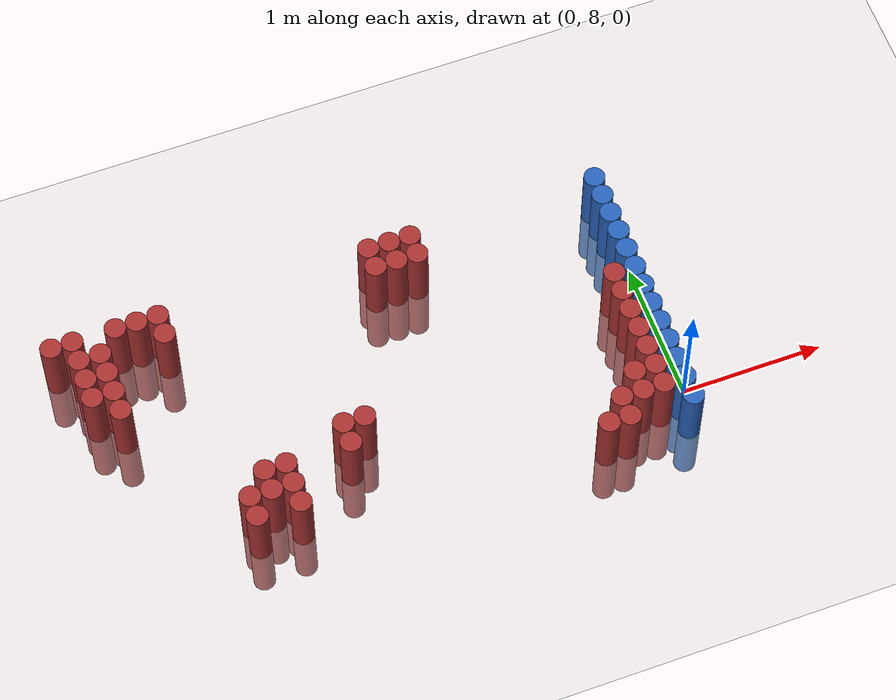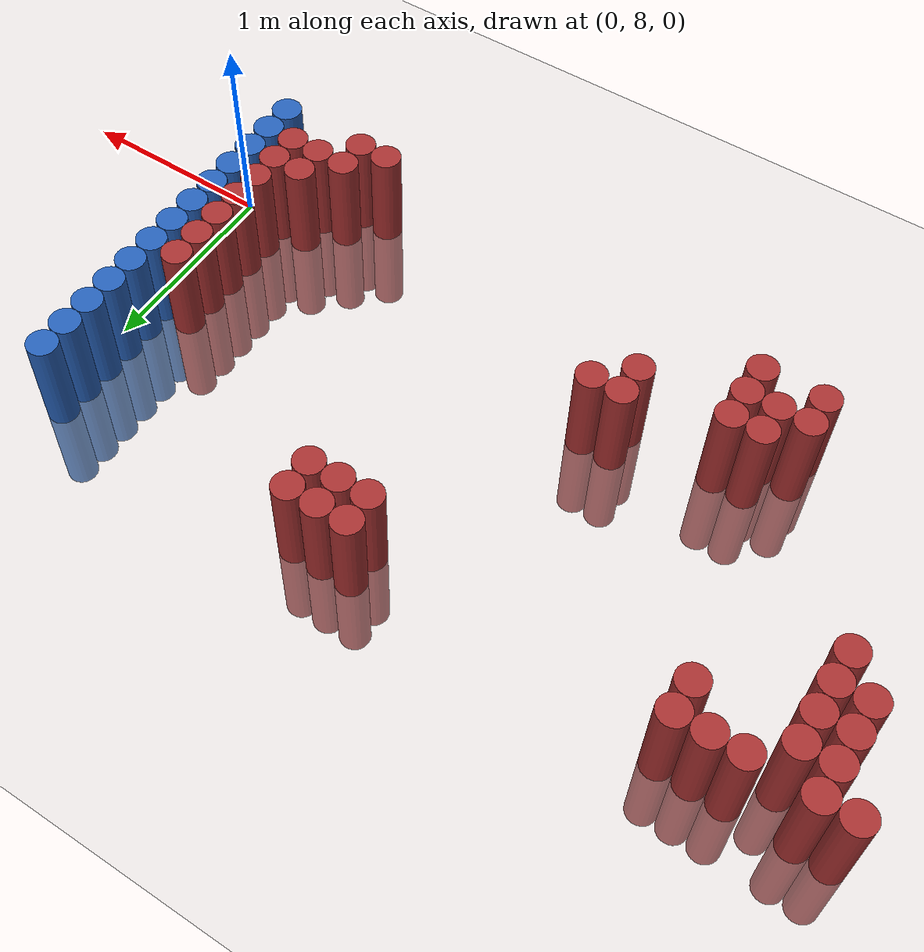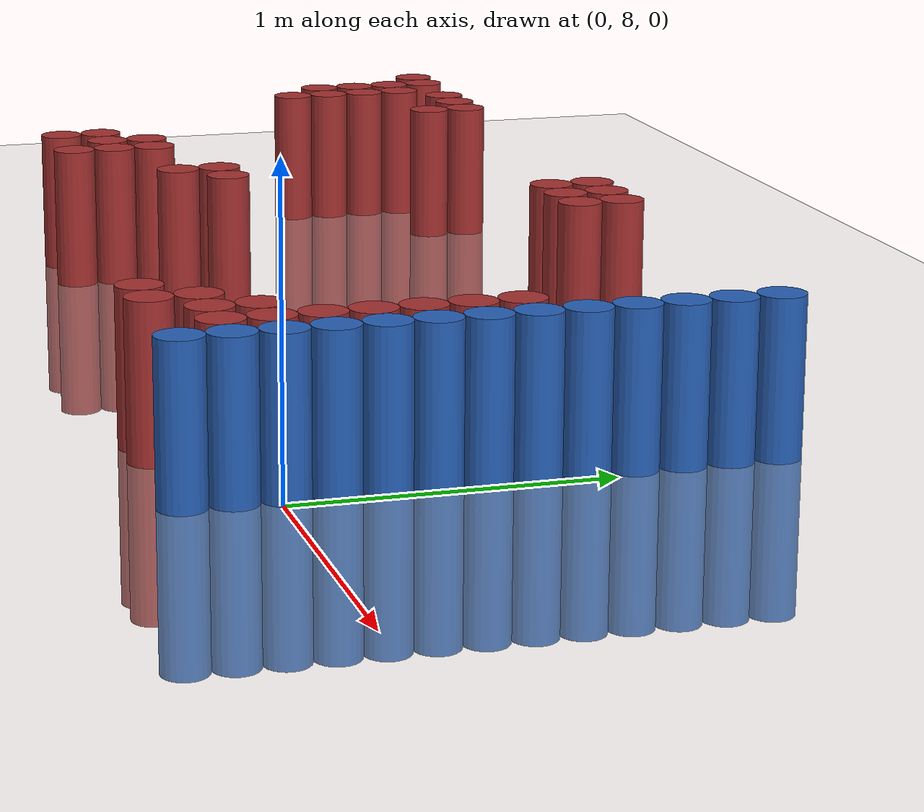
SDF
<sdf version="1.6">
 <world name="default">
  <model name="ground_plane">
   <static>1</static>
   <link name="link">
    <collision name="collision">
     <geometry><plane><normal>0 0 1</normal><size>100 100</size></plane></geometry>
     <surface><friction><ode><mu>100</mu><mu2>50</mu2></ode></friction></surface>
    </collision>
    <visual name="visual">
     <cast_shadows>0</cast_shadows>
     <geometry><plane><normal>0 0 1</normal><size>100 100</size></plane></geometry>
     <material>
      <script><uri>file://media/materials/scripts/gazebo.material</uri><name>Gazebo/Grey</name></script>
     </material>
    </visual>
   </link>
  </model>
  <model name="unit_cylinder_153">
   <static>1</static>
   <pose>-3.975000 9.525000 0.000000 0.000000 0.000000 0.000000</pose>
   <link name="link">
    <inertial>
     <mass>1</mass>
     <inertia><ixx>0.145833</ixx><ixy>0</ixy><ixz>0</ixz><iyy>0.145833</iyy><iyz>0</iyz><izz>0.125</izz></inertia>
    </inertial>
    <collision name="collision">
     <geometry><cylinder><radius>0.075000</radius><length>1</length></cylinder></geometry>
    </collision>
    <visual name="visual">
     <geometry><cylinder><radius>0.075000</radius><length>1</length></cylinder></geometry>
     <material>
      <ambient>0.648000 0.192000 0.192000 1</ambient>
      <diffuse>0.648000 0.192000 0.192000 1</diffuse>
     </material>
     <material>
      <script><name>Gazebo/Grey</name><uri>file://media/materials/scripts/gazebo.material</uri></script>
     </material>
    </visual>
   </link>
  </model>
  <model name="unit_cylinder_154">
   <static>1</static>
   <pose>-3.825000 9.075000 0.000000 0.000000 0.000000 0.000000</pose>
   <link name="link">
    <inertial>
     <mass>1</mass>
     <inertia><ixx>0.145833</ixx><ixy>0</ixy><ixz>0</ixz><iyy>0.145833</iyy><iyz>0</iyz><izz>0.125</izz></inertia>
    </inertial>
    <collision name="collision">
     <geometry><cylinder><radius>0.075000</radius><length>1</length></cylinder></geometry>
    </collision>
    <visual name="visual">
     <geometry><cylinder><radius>0.075000</radius><length>1</length></cylinder></geometry>
     <material>
      <ambient>0.648000 0.192000 0.192000 1</ambient>
      <diffuse>0.648000 0.192000 0.192000 1</diffuse>
     </material>
     <material>
      <script><name>Gazebo/Grey</name><uri>file://media/materials/scripts/gazebo.material</uri></script>
     </material>
    </visual>
   </link>
  </model>
  <model name="unit_cylinder_155">
   <static>1</static>
   <pose>-3.825000 9.225000 0.000000 0.000000 0.000000 0.000000</pose>
   <link name="link">
    <inertial>
     <mass>1</mass>
     <inertia><ixx>0.145833</ixx><ixy>0</ixy><ixz>0</ixz><iyy>0.145833</iyy><iyz>0</iyz><izz>0.125</izz></inertia>
    </inertial>
    <collision name="collision">
     <geometry><cylinder><radius>0.075000</radius><length>1</length></cylinder></geometry>
    </collision>
    <visual name="visual">
     <geometry><cylinder><radius>0.075000</radius><length>1</length></cylinder></geometry>
     <material>
      <ambient>0.648000 0.192000 0.192000 1</ambient>
      <diffuse>0.648000 0.192000 0.192000 1</diffuse>
     </material>
     <material>
      <script><name>Gazebo/Grey</name><uri>file://media/materials/scripts/gazebo.material</uri></script>
     </material>
    </visual>
   </link>
  </model>
  <model name="unit_cylinder_156">
   <static>1</static>
   <pose>-3.825000 9.375000 0.000000 0.000000 0.000000 0.000000</pose>
   <link name="link">
    <inertial>
     <mass>1</mass>
     <inertia><ixx>0.145833</ixx><ixy>0</ixy><ixz>0</ixz><iyy>0.145833</iyy><iyz>0</iyz><izz>0.125</izz></inertia>
    </inertial>
    <collision name="collision">
     <geometry><cylinder><radius>0.075000</radius><length>1</length></cylinder></geometry>
    </collision>
    <visual name="visual">
     <geometry><cylinder><radius>0.075000</radius><length>1</length></cylinder></geometry>
     <material>
      <ambient>0.648000 0.192000 0.192000 1</ambient>
      <diffuse>0.648000 0.192000 0.192000 1</diffuse>
     </material>
     <material>
      <script><name>Gazebo/Grey</name><uri>file://media/materials/scripts/gazebo.material</uri></script>
     </material>
    </visual>
   </link>
  </model>
  <model name="unit_cylinder_157">
   <static>1</static>
   <pose>-3.825000 9.525000 0.000000 0.000000 0.000000 0.000000</pose>
   <link name="link">
    <inertial>
     <mass>1</mass>
     <inertia><ixx>0.145833</ixx><ixy>0</ixy><ixz>0</ixz><iyy>0.145833</iyy><iyz>0</iyz><izz>0.125</izz></inertia>
    </inertial>
    <collision name="collision">
     <geometry><cylinder><radius>0.075000</radius><length>1</length></cylinder></geometry>
    </collision>
    <visual name="visual">
     <geometry><cylinder><radius>0.075000</radius><length>1</length></cylinder></geometry>
     <material>
      <ambient>0.648000 0.192000 0.192000 1</ambient>
      <diffuse>0.648000 0.192000 0.192000 1</diffuse>
     </material>
     <material>
      <script><name>Gazebo/Grey</name><uri>file://media/materials/scripts/gazebo.material</uri></script>
     </material>
    </visual>
   </link>
  </model>
  <model name="unit_cylinder_159">
   <static>1</static>
   <pose>-3.675000 8.925000 0.000000 0.000000 0.000000 0.000000</pose>
   <link name="link">
    <inertial>
     <mass>1</mass>
     <inertia><ixx>0.145833</ixx><ixy>0</ixy><ixz>0</ixz><iyy>0.145833</iyy><iyz>0</iyz><izz>0.125</izz></inertia>
    </inertial>
    <collision name="collision">
     <geometry><cylinder><radius>0.075000</radius><length>1</length></cylinder></geometry>
    </collision>
    <visual name="visual">
     <geometry><cylinder><radius>0.075000</radius><length>1</length></cylinder></geometry>
     <material>
      <ambient>0.648000 0.192000 0.192000 1</ambient>
      <diffuse>0.648000 0.192000 0.192000 1</diffuse>
     </material>
     <material>
      <script><name>Gazebo/Grey</name><uri>file://media/materials/scripts/gazebo.material</uri></script>
     </material>
    </visual>
   </link>
  </model>
  <model name="unit_cylinder_160">
   <static>1</static>
   <pose>-3.675000 9.075000 0.000000 0.000000 0.000000 0.000000</pose>
   <link name="link">
    <inertial>
     <mass>1</mass>
     <inertia><ixx>0.145833</ixx><ixy>0</ixy><ixz>0</ixz><iyy>0.145833</iyy><iyz>0</iyz><izz>0.125</izz></inertia>
    </inertial>
    <collision name="collision">
     <geometry><cylinder><radius>0.075000</radius><length>1</length></cylinder></geometry>
    </collision>
    <visual name="visual">
     <geometry><cylinder><radius>0.075000</radius><length>1</length></cylinder></geometry>
     <material>
      <ambient>0.648000 0.192000 0.192000 1</ambient>
      <diffuse>0.648000 0.192000 0.192000 1</diffuse>
     </material>
     <material>
      <script><name>Gazebo/Grey</name><uri>file://media/materials/scripts/gazebo.material</uri></script>
     </material>
    </visual>
   </link>
  </model>
  <model name="unit_cylinder_161">
   <static>1</static>
   <pose>-3.675000 9.225000 0.000000 0.000000 0.000000 0.000000</pose>
   <link name="link">
    <inertial>
     <mass>1</mass>
     <inertia><ixx>0.145833</ixx><ixy>0</ixy><ixz>0</ixz><iyy>0.145833</iyy><iyz>0</iyz><izz>0.125</izz></inertia>
    </inertial>
    <collision name="collision">
     <geometry><cylinder><radius>0.075000</radius><length>1</length></cylinder></geometry>
    </collision>
    <visual name="visual">
     <geometry><cylinder><radius>0.075000</radius><length>1</length></cylinder></geometry>
     <material>
      <ambient>0.648000 0.192000 0.192000 1</ambient>
      <diffuse>0.648000 0.192000 0.192000 1</diffuse>
     </material>
     <material>
      <script><name>Gazebo/Grey</name><uri>file://media/materials/scripts/gazebo.material</uri></script>
     </material>
    </visual>
   </link>
  </model>
  <model name="unit_cylinder_162">
   <static>1</static>
   <pose>-3.675000 9.375000 0.000000 0.000000 0.000000 0.000000</pose>
   <link name="link">
    <inertial>
     <mass>1</mass>
     <inertia><ixx>0.145833</ixx><ixy>0</ixy><ixz>0</ixz><iyy>0.145833</iyy><iyz>0</iyz><izz>0.125</izz></inertia>
    </inertial>
    <collision name="collision">
     <geometry><cylinder><radius>0.075000</radius><length>1</length></cylinder></geometry>
    </collision>
    <visual name="visual">
     <geometry><cylinder><radius>0.075000</radius><length>1</length></cylinder></geometry>
     <material>
      <ambient>0.648000 0.192000 0.192000 1</ambient>
      <diffuse>0.648000 0.192000 0.192000 1</diffuse>
     </material>
     <material>
      <script><name>Gazebo/Grey</name><uri>file://media/materials/scripts/gazebo.material</uri></script>
     </material>
    </visual>
   </link>
  </model>
  <model name="unit_cylinder_166">
   <static>1</static>
   <pose>-3.525000 9.525000 0.000000 0.000000 0.000000 0.000000</pose>
   <link name="link">
    <inertial>
     <mass>1</mass>
     <inertia><ixx>0.145833</ixx><ixy>0</ixy><ixz>0</ixz><iyy>0.145833</iyy><iyz>0</iyz><izz>0.125</izz></inertia>
    </inertial>
    <collision name="collision">
     <geometry><cylinder><radius>0.075000</radius><length>1</length></cylinder></geometry>
    </collision>
    <visual name="visual">
     <geometry><cylinder><radius>0.075000</radius><length>1</length></cylinder></geometry>
     <material>
      <ambient>0.648000 0.192000 0.192000 1</ambient>
      <diffuse>0.648000 0.192000 0.192000 1</diffuse>
     </material>
     <material>
      <script><name>Gazebo/Grey</name><uri>file://media/materials/scripts/gazebo.material</uri></script>
     </material>
    </visual>
   </link>
  </model>
  <model name="unit_cylinder_167">
   <static>1</static>
   <pose>-3.375000 9.525000 0.000000 0.000000 0.000000 0.000000</pose>
   <link name="link">
    <inertial>
     <mass>1</mass>
     <inertia><ixx>0.145833</ixx><ixy>0</ixy><ixz>0</ixz><iyy>0.145833</iyy><iyz>0</iyz><izz>0.125</izz></inertia>
    </inertial>
    <collision name="collision">
     <geometry><cylinder><radius>0.075000</radius><length>1</length></cylinder></geometry>
    </collision>
    <visual name="visual">
     <geometry><cylinder><radius>0.075000</radius><length>1</length></cylinder></geometry>
     <material>
      <ambient>0.648000 0.192000 0.192000 1</ambient>
      <diffuse>0.648000 0.192000 0.192000 1</diffuse>
     </material>
     <material>
      <script><name>Gazebo/Grey</name><uri>file://media/materials/scripts/gazebo.material</uri></script>
     </material>
    </visual>
   </link>
  </model>
  <model name="unit_cylinder_169">
   <static>1</static>
   <pose>-3.225000 9.375000 0.000000 0.000000 0.000000 0.000000</pose>
   <link name="link">
    <inertial>
     <mass>1</mass>
     <inertia><ixx>0.145833</ixx><ixy>0</ixy><ixz>0</ixz><iyy>0.145833</iyy><iyz>0</iyz><izz>0.125</izz></inertia>
    </inertial>
    <collision name="collision">
     <geometry><cylinder><radius>0.075000</radius><length>1</length></cylinder></geometry>
    </collision>
    <visual name="visual">
     <geometry><cylinder><radius>0.075000</radius><length>1</length></cylinder></geometry>
     <material>
      <ambient>0.648000 0.192000 0.192000 1</ambient>
      <diffuse>0.648000 0.192000 0.192000 1</diffuse>
     </material>
     <material>
      <script><name>Gazebo/Grey</name><uri>file://media/materials/scripts/gazebo.material</uri></script>
     </material>
    </visual>
   </link>
  </model>
  <model name="unit_cylinder_170">
   <static>1</static>
   <pose>-3.225000 9.525000 0.000000 0.000000 0.000000 0.000000</pose>
   <link name="link">
    <inertial>
     <mass>1</mass>
     <inertia><ixx>0.145833</ixx><ixy>0</ixy><ixz>0</ixz><iyy>0.145833</iyy><iyz>0</iyz><izz>0.125</izz></inertia>
    </inertial>
    <collision name="collision">
     <geometry><cylinder><radius>0.075000</radius><length>1</length></cylinder></geometry>
    </collision>
    <visual name="visual">
     <geometry><cylinder><radius>0.075000</radius><length>1</length></cylinder></geometry>
     <material>
      <ambient>0.648000 0.192000 0.192000 1</ambient>
      <diffuse>0.648000 0.192000 0.192000 1</diffuse>
     </material>
     <material>
      <script><name>Gazebo/Grey</name><uri>file://media/materials/scripts/gazebo.material</uri></script>
     </material>
    </visual>
   </link>
  </model>
  <model name="unit_cylinder_174">
   <static>1</static>
   <pose>-3.075000 7.875000 0.000000 0.000000 0.000000 0.000000</pose>
   <link name="link">
    <inertial>
     <mass>1</mass>
     <inertia><ixx>0.145833</ixx><ixy>0</ixy><ixz>0</ixz><iyy>0.145833</iyy><iyz>0</iyz><izz>0.125</izz></inertia>
    </inertial>
    <collision name="collision">
     <geometry><cylinder><radius>0.075000</radius><length>1</length></cylinder></geometry>
    </collision>
    <visual name="visual">
     <geometry><cylinder><radius>0.075000</radius><length>1</length></cylinder></geometry>
     <material>
      <ambient>0.648000 0.192000 0.192000 1</ambient>
      <diffuse>0.648000 0.192000 0.192000 1</diffuse>
     </material>
     <material>
      <script><name>Gazebo/Grey</name><uri>file://media/materials/scripts/gazebo.material</uri></script>
     </material>
    </visual>
   </link>
  </model>
  <model name="unit_cylinder_175">
   <static>1</static>
   <pose>-3.075000 8.025000 0.000000 0.000000 0.000000 0.000000</pose>
   <link name="link">
    <inertial>
     <mass>1</mass>
     <inertia><ixx>0.145833</ixx><ixy>0</ixy><ixz>0</ixz><iyy>0.145833</iyy><iyz>0</iyz><izz>0.125</izz></inertia>
    </inertial>
    <collision name="collision">
     <geometry><cylinder><radius>0.075000</radius><length>1</length></cylinder></geometry>
    </collision>
    <visual name="visual">
     <geometry><cylinder><radius>0.075000</radius><length>1</length></cylinder></geometry>
     <material>
      <ambient>0.648000 0.192000 0.192000 1</ambient>
      <diffuse>0.648000 0.192000 0.192000 1</diffuse>
     </material>
     <material>
      <script><name>Gazebo/Grey</name><uri>file://media/materials/scripts/gazebo.material</uri></script>
     </material>
    </visual>
   </link>
  </model>
  <model name="unit_cylinder_178">
   <static>1</static>
   <pose>-2.925000 8.025000 0.000000 0.000000 0.000000 0.000000</pose>
   <link name="link">
    <inertial>
     <mass>1</mass>
     <inertia><ixx>0.145833</ixx><ixy>0</ixy><ixz>0</ixz><iyy>0.145833</iyy><iyz>0</iyz><izz>0.125</izz></inertia>
    </inertial>
    <collision name="collision">
     <geometry><cylinder><radius>0.075000</radius><length>1</length></cylinder></geometry>
    </collision>
    <visual name="visual">
     <geometry><cylinder><radius>0.075000</radius><length>1</length></cylinder></geometry>
     <material>
      <ambient>0.648000 0.192000 0.192000 1</ambient>
      <diffuse>0.648000 0.192000 0.192000 1</diffuse>
     </material>
     <material>
      <script><name>Gazebo/Grey</name><uri>file://media/materials/scripts/gazebo.material</uri></script>
     </material>
    </visual>
   </link>
  </model>
  <model name="unit_cylinder_179">
   <static>1</static>
   <pose>-2.925000 8.175000 0.000000 0.000000 0.000000 0.000000</pose>
   <link name="link">
    <inertial>
     <mass>1</mass>
     <inertia><ixx>0.145833</ixx><ixy>0</ixy><ixz>0</ixz><iyy>0.145833</iyy><iyz>0</iyz><izz>0.125</izz></inertia>
    </inertial>
    <collision name="collision">
     <geometry><cylinder><radius>0.075000</radius><length>1</length></cylinder></geometry>
    </collision>
    <visual name="visual">
     <geometry><cylinder><radius>0.075000</radius><length>1</length></cylinder></geometry>
     <material>
      <ambient>0.648000 0.192000 0.192000 1</ambient>
      <diffuse>0.648000 0.192000 0.192000 1</diffuse>
     </material>
     <material>
      <script><name>Gazebo/Grey</name><uri>file://media/materials/scripts/gazebo.material</uri></script>
     </material>
    </visual>
   </link>
  </model>
  <model name="unit_cylinder_184">
   <static>1</static>
   <pose>-2.775000 7.875000 0.000000 0.000000 0.000000 0.000000</pose>
   <link name="link">
    <inertial>
     <mass>1</mass>
     <inertia><ixx>0.145833</ixx><ixy>0</ixy><ixz>0</ixz><iyy>0.145833</iyy><iyz>0</iyz><izz>0.125</izz></inertia>
    </inertial>
    <collision name="collision">
     <geometry><cylinder><radius>0.075000</radius><length>1</length></cylinder></geometry>
    </collision>
    <visual name="visual">
     <geometry><cylinder><radius>0.075000</radius><length>1</length></cylinder></geometry>
     <material>
      <ambient>0.648000 0.192000 0.192000 1</ambient>
      <diffuse>0.648000 0.192000 0.192000 1</diffuse>
     </material>
     <material>
      <script><name>Gazebo/Grey</name><uri>file://media/materials/scripts/gazebo.material</uri></script>
     </material>
    </visual>
   </link>
  </model>
  <model name="unit_cylinder_185">
   <static>1</static>
   <pose>-2.775000 8.025000 0.000000 0.000000 0.000000 0.000000</pose>
   <link name="link">
    <inertial>
     <mass>1</mass>
     <inertia><ixx>0.145833</ixx><ixy>0</ixy><ixz>0</ixz><iyy>0.145833</iyy><iyz>0</iyz><izz>0.125</izz></inertia>
    </inertial>
    <collision name="collision">
     <geometry><cylinder><radius>0.075000</radius><length>1</length></cylinder></geometry>
    </collision>
    <visual name="visual">
     <geometry><cylinder><radius>0.075000</radius><length>1</length></cylinder></geometry>
     <material>
      <ambient>0.648000 0.192000 0.192000 1</ambient>
      <diffuse>0.648000 0.192000 0.192000 1</diffuse>
     </material>
     <material>
      <script><name>Gazebo/Grey</name><uri>file://media/materials/scripts/gazebo.material</uri></script>
     </material>
    </visual>
   </link>
  </model>
  <model name="unit_cylinder_186">
   <static>1</static>
   <pose>-2.775000 8.175000 0.000000 0.000000 0.000000 0.000000</pose>
   <link name="link">
    <inertial>
     <mass>1</mass>
     <inertia><ixx>0.145833</ixx><ixy>0</ixy><ixz>0</ixz><iyy>0.145833</iyy><iyz>0</iyz><izz>0.125</izz></inertia>
    </inertial>
    <collision name="collision">
     <geometry><cylinder><radius>0.075000</radius><length>1</length></cylinder></geometry>
    </collision>
    <visual name="visual">
     <geometry><cylinder><radius>0.075000</radius><length>1</length></cylinder></geometry>
     <material>
      <ambient>0.648000 0.192000 0.192000 1</ambient>
      <diffuse>0.648000 0.192000 0.192000 1</diffuse>
     </material>
     <material>
      <script><name>Gazebo/Grey</name><uri>file://media/materials/scripts/gazebo.material</uri></script>
     </material>
    </visual>
   </link>
  </model>
  <model name="unit_cylinder_194">
   <static>1</static>
   <pose>-2.325000 8.175000 0.000000 0.000000 0.000000 0.000000</pose>
   <link name="link">
    <inertial>
     <mass>1</mass>
     <inertia><ixx>0.145833</ixx><ixy>0</ixy><ixz>0</ixz><iyy>0.145833</iyy><iyz>0</iyz><izz>0.125</izz></inertia>
    </inertial>
    <collision name="collision">
     <geometry><cylinder><radius>0.075000</radius><length>1</length></cylinder></geometry>
    </collision>
    <visual name="visual">
     <geometry><cylinder><radius>0.075000</radius><length>1</length></cylinder></geometry>
     <material>
      <ambient>0.648000 0.192000 0.192000 1</ambient>
      <diffuse>0.648000 0.192000 0.192000 1</diffuse>
     </material>
     <material>
      <script><name>Gazebo/Grey</name><uri>file://media/materials/scripts/gazebo.material</uri></script>
     </material>
    </visual>
   </link>
  </model>
  <model name="unit_cylinder_195">
   <static>1</static>
   <pose>-2.325000 8.325000 0.000000 0.000000 0.000000 0.000000</pose>
   <link name="link">
    <inertial>
     <mass>1</mass>
     <inertia><ixx>0.145833</ixx><ixy>0</ixy><ixz>0</ixz><iyy>0.145833</iyy><iyz>0</iyz><izz>0.125</izz></inertia>
    </inertial>
    <collision name="collision">
     <geometry><cylinder><radius>0.075000</radius><length>1</length></cylinder></geometry>
    </collision>
    <visual name="visual">
     <geometry><cylinder><radius>0.075000</radius><length>1</length></cylinder></geometry>
     <material>
      <ambient>0.648000 0.192000 0.192000 1</ambient>
      <diffuse>0.648000 0.192000 0.192000 1</diffuse>
     </material>
     <material>
      <script><name>Gazebo/Grey</name><uri>file://media/materials/scripts/gazebo.material</uri></script>
     </material>
    </visual>
   </link>
  </model>
  <model name="unit_cylinder_196">
   <static>1</static>
   <pose>-2.175000 8.325000 0.000000 0.000000 0.000000 0.000000</pose>
   <link name="link">
    <inertial>
     <mass>1</mass>
     <inertia><ixx>0.145833</ixx><ixy>0</ixy><ixz>0</ixz><iyy>0.145833</iyy><iyz>0</iyz><izz>0.125</izz></inertia>
    </inertial>
    <collision name="collision">
     <geometry><cylinder><radius>0.075000</radius><length>1</length></cylinder></geometry>
    </collision>
    <visual name="visual">
     <geometry><cylinder><radius>0.075000</radius><length>1</length></cylinder></geometry>
     <material>
      <ambient>0.648000 0.192000 0.192000 1</ambient>
      <diffuse>0.648000 0.192000 0.192000 1</diffuse>
     </material>
     <material>
      <script><name>Gazebo/Grey</name><uri>file://media/materials/scripts/gazebo.material</uri></script>
     </material>
    </visual>
   </link>
  </model>
  <model name="unit_cylinder_197">
   <static>1</static>
   <pose>-1.725000 9.375000 0.000000 0.000000 0.000000 0.000000</pose>
   <link name="link">
    <inertial>
     <mass>1</mass>
     <inertia><ixx>0.145833</ixx><ixy>0</ixy><ixz>0</ixz><iyy>0.145833</iyy><iyz>0</iyz><izz>0.125</izz></inertia>
    </inertial>
    <collision name="collision">
     <geometry><cylinder><radius>0.075000</radius><length>1</length></cylinder></geometry>
    </collision>
    <visual name="visual">
     <geometry><cylinder><radius>0.075000</radius><length>1</length></cylinder></geometry>
     <material>
      <ambient>0.648000 0.192000 0.192000 1</ambient>
      <diffuse>0.648000 0.192000 0.192000 1</diffuse>
     </material>
     <material>
      <script><name>Gazebo/Grey</name><uri>file://media/materials/scripts/gazebo.material</uri></script>
     </material>
    </visual>
   </link>
  </model>
  <model name="unit_cylinder_198">
   <static>1</static>
   <pose>-1.725000 9.525000 0.000000 0.000000 0.000000 0.000000</pose>
   <link name="link">
    <inertial>
     <mass>1</mass>
     <inertia><ixx>0.145833</ixx><ixy>0</ixy><ixz>0</ixz><iyy>0.145833</iyy><iyz>0</iyz><izz>0.125</izz></inertia>
    </inertial>
    <collision name="collision">
     <geometry><cylinder><radius>0.075000</radius><length>1</length></cylinder></geometry>
    </collision>
    <visual name="visual">
     <geometry><cylinder><radius>0.075000</radius><length>1</length></cylinder></geometry>
     <material>
      <ambient>0.648000 0.192000 0.192000 1</ambient>
      <diffuse>0.648000 0.192000 0.192000 1</diffuse>
     </material>
     <material>
      <script><name>Gazebo/Grey</name><uri>file://media/materials/scripts/gazebo.material</uri></script>
     </material>
    </visual>
   </link>
  </model>
  <model name="unit_cylinder_199">
   <static>1</static>
   <pose>-1.575000 9.375000 0.000000 0.000000 0.000000 0.000000</pose>
   <link name="link">
    <inertial>
     <mass>1</mass>
     <inertia><ixx>0.145833</ixx><ixy>0</ixy><ixz>0</ixz><iyy>0.145833</iyy><iyz>0</iyz><izz>0.125</izz></inertia>
    </inertial>
    <collision name="collision">
     <geometry><cylinder><radius>0.075000</radius><length>1</length></cylinder></geometry>
    </collision>
    <visual name="visual">
     <geometry><cylinder><radius>0.075000</radius><length>1</length></cylinder></geometry>
     <material>
      <ambient>0.648000 0.192000 0.192000 1</ambient>
      <diffuse>0.648000 0.192000 0.192000 1</diffuse>
     </material>
     <material>
      <script><name>Gazebo/Grey</name><uri>file://media/materials/scripts/gazebo.material</uri></script>
     </material>
    </visual>
   </link>
  </model>
  <model name="unit_cylinder_200">
   <static>1</static>
   <pose>-1.575000 9.525000 0.000000 0.000000 0.000000 0.000000</pose>
   <link name="link">
    <inertial>
     <mass>1</mass>
     <inertia><ixx>0.145833</ixx><ixy>0</ixy><ixz>0</ixz><iyy>0.145833</iyy><iyz>0</iyz><izz>0.125</izz></inertia>
    </inertial>
    <collision name="collision">
     <geometry><cylinder><radius>0.075000</radius><length>1</length></cylinder></geometry>
    </collision>
    <visual name="visual">
     <geometry><cylinder><radius>0.075000</radius><length>1</length></cylinder></geometry>
     <material>
      <ambient>0.648000 0.192000 0.192000 1</ambient>
      <diffuse>0.648000 0.192000 0.192000 1</diffuse>
     </material>
     <material>
      <script><name>Gazebo/Grey</name><uri>file://media/materials/scripts/gazebo.material</uri></script>
     </material>
    </visual>
   </link>
  </model>
  <model name="unit_cylinder_201">
   <static>1</static>
   <pose>-1.425000 9.375000 0.000000 0.000000 0.000000 0.000000</pose>
   <link name="link">
    <inertial>
     <mass>1</mass>
     <inertia><ixx>0.145833</ixx><ixy>0</ixy><ixz>0</ixz><iyy>0.145833</iyy><iyz>0</iyz><izz>0.125</izz></inertia>
    </inertial>
    <collision name="collision">
     <geometry><cylinder><radius>0.075000</radius><length>1</length></cylinder></geometry>
    </collision>
    <visual name="visual">
     <geometry><cylinder><radius>0.075000</radius><length>1</length></cylinder></geometry>
     <material>
      <ambient>0.648000 0.192000 0.192000 1</ambient>
      <diffuse>0.648000 0.192000 0.192000 1</diffuse>
     </material>
     <material>
      <script><name>Gazebo/Grey</name><uri>file://media/materials/scripts/gazebo.material</uri></script>
     </material>
    </visual>
   </link>
  </model>
  <model name="unit_cylinder_202">
   <static>1</static>
   <pose>-1.425000 9.525000 0.000000 0.000000 0.000000 0.000000</pose>
   <link name="link">
    <inertial>
     <mass>1</mass>
     <inertia><ixx>0.145833</ixx><ixy>0</ixy><ixz>0</ixz><iyy>0.145833</iyy><iyz>0</iyz><izz>0.125</izz></inertia>
    </inertial>
    <collision name="collision">
     <geometry><cylinder><radius>0.075000</radius><length>1</length></cylinder></geometry>
    </collision>
    <visual name="visual">
     <geometry><cylinder><radius>0.075000</radius><length>1</length></cylinder></geometry>
     <material>
      <ambient>0.648000 0.192000 0.192000 1</ambient>
      <diffuse>0.648000 0.192000 0.192000 1</diffuse>
     </material>
     <material>
      <script><name>Gazebo/Grey</name><uri>file://media/materials/scripts/gazebo.material</uri></script>
     </material>
    </visual>
   </link>
  </model>
  <model name="unit_cylinder_214">
   <static>1</static>
   <pose>-0.675000 7.725000 0.000000 0.000000 0.000000 0.000000</pose>
   <link name="link">
    <inertial>
     <mass>1</mass>
     <inertia><ixx>0.145833</ixx><ixy>0</ixy><ixz>0</ixz><iyy>0.145833</iyy><iyz>0</iyz><izz>0.125</izz></inertia>
    </inertial>
    <collision name="collision">
     <geometry><cylinder><radius>0.075000</radius><length>1</length></cylinder></geometry>
    </collision>
    <visual name="visual">
     <geometry><cylinder><radius>0.075000</radius><length>1</length></cylinder></geometry>
     <material>
      <ambient>0.648000 0.192000 0.192000 1</ambient>
      <diffuse>0.648000 0.192000 0.192000 1</diffuse>
     </material>
     <material>
      <script><name>Gazebo/Grey</name><uri>file://media/materials/scripts/gazebo.material</uri></script>
     </material>
    </visual>
   </link>
  </model>
  <model name="unit_cylinder_216">
   <static>1</static>
   <pose>-0.525000 7.725000 0.000000 0.000000 0.000000 0.000000</pose>
   <link name="link">
    <inertial>
     <mass>1</mass>
     <inertia><ixx>0.145833</ixx><ixy>0</ixy><ixz>0</ixz><iyy>0.145833</iyy><iyz>0</iyz><izz>0.125</izz></inertia>
    </inertial>
    <collision name="collision">
     <geometry><cylinder><radius>0.075000</radius><length>1</length></cylinder></geometry>
    </collision>
    <visual name="visual">
     <geometry><cylinder><radius>0.075000</radius><length>1</length></cylinder></geometry>
     <material>
      <ambient>0.648000 0.192000 0.192000 1</ambient>
      <diffuse>0.648000 0.192000 0.192000 1</diffuse>
     </material>
     <material>
      <script><name>Gazebo/Grey</name><uri>file://media/materials/scripts/gazebo.material</uri></script>
     </material>
    </visual>
   </link>
  </model>
  <model name="unit_cylinder_217">
   <static>1</static>
   <pose>-0.525000 7.875000 0.000000 0.000000 0.000000 0.000000</pose>
   <link name="link">
    <inertial>
     <mass>1</mass>
     <inertia><ixx>0.145833</ixx><ixy>0</ixy><ixz>0</ixz><iyy>0.145833</iyy><iyz>0</iyz><izz>0.125</izz></inertia>
    </inertial>
    <collision name="collision">
     <geometry><cylinder><radius>0.075000</radius><length>1</length></cylinder></geometry>
    </collision>
    <visual name="visual">
     <geometry><cylinder><radius>0.075000</radius><length>1</length></cylinder></geometry>
     <material>
      <ambient>0.648000 0.192000 0.192000 1</ambient>
      <diffuse>0.648000 0.192000 0.192000 1</diffuse>
     </material>
     <material>
      <script><name>Gazebo/Grey</name><uri>file://media/materials/scripts/gazebo.material</uri></script>
     </material>
    </visual>
   </link>
  </model>
  <model name="unit_cylinder_221">
   <static>1</static>
   <pose>-0.375000 7.875000 0.000000 0.000000 0.000000 0.000000</pose>
   <link name="link">
    <inertial>
     <mass>1</mass>
     <inertia><ixx>0.145833</ixx><ixy>0</ixy><ixz>0</ixz><iyy>0.145833</iyy><iyz>0</iyz><izz>0.125</izz></inertia>
    </inertial>
    <collision name="collision">
     <geometry><cylinder><radius>0.075000</radius><length>1</length></cylinder></geometry>
    </collision>
    <visual name="visual">
     <geometry><cylinder><radius>0.075000</radius><length>1</length></cylinder></geometry>
     <material>
      <ambient>0.648000 0.192000 0.192000 1</ambient>
      <diffuse>0.648000 0.192000 0.192000 1</diffuse>
     </material>
     <material>
      <script><name>Gazebo/Grey</name><uri>file://media/materials/scripts/gazebo.material</uri></script>
     </material>
    </visual>
   </link>
  </model>
  <model name="unit_cylinder_222">
   <static>1</static>
   <pose>-0.375000 8.025000 0.000000 0.000000 0.000000 0.000000</pose>
   <link name="link">
    <inertial>
     <mass>1</mass>
     <inertia><ixx>0.145833</ixx><ixy>0</ixy><ixz>0</ixz><iyy>0.145833</iyy><iyz>0</iyz><izz>0.125</izz></inertia>
    </inertial>
    <collision name="collision">
     <geometry><cylinder><radius>0.075000</radius><length>1</length></cylinder></geometry>
    </collision>
    <visual name="visual">
     <geometry><cylinder><radius>0.075000</radius><length>1</length></cylinder></geometry>
     <material>
      <ambient>0.648000 0.192000 0.192000 1</ambient>
      <diffuse>0.648000 0.192000 0.192000 1</diffuse>
     </material>
     <material>
      <script><name>Gazebo/Grey</name><uri>file://media/materials/scripts/gazebo.material</uri></script>
     </material>
    </visual>
   </link>
  </model>
  <model name="unit_cylinder_231">
   <static>1</static>
   <pose>-0.225000 7.875000 0.000000 0.000000 0.000000 0.000000</pose>
   <link name="link">
    <inertial>
     <mass>1</mass>
     <inertia><ixx>0.145833</ixx><ixy>0</ixy><ixz>0</ixz><iyy>0.145833</iyy><iyz>0</iyz><izz>0.125</izz></inertia>
    </inertial>
    <collision name="collision">
     <geometry><cylinder><radius>0.075000</radius><length>1</length></cylinder></geometry>
    </collision>
    <visual name="visual">
     <geometry><cylinder><radius>0.075000</radius><length>1</length></cylinder></geometry>
     <material>
      <ambient>0.648000 0.192000 0.192000 1</ambient>
      <diffuse>0.648000 0.192000 0.192000 1</diffuse>
     </material>
     <material>
      <script><name>Gazebo/Grey</name><uri>file://media/materials/scripts/gazebo.material</uri></script>
     </material>
    </visual>
   </link>
  </model>
  <model name="unit_cylinder_232">
   <static>1</static>
   <pose>-0.225000 8.025000 0.000000 0.000000 0.000000 0.000000</pose>
   <link name="link">
    <inertial>
     <mass>1</mass>
     <inertia><ixx>0.145833</ixx><ixy>0</ixy><ixz>0</ixz><iyy>0.145833</iyy><iyz>0</iyz><izz>0.125</izz></inertia>
    </inertial>
    <collision name="collision">
     <geometry><cylinder><radius>0.075000</radius><length>1</length></cylinder></geometry>
    </collision>
    <visual name="visual">
     <geometry><cylinder><radius>0.075000</radius><length>1</length></cylinder></geometry>
     <material>
      <ambient>0.648000 0.192000 0.192000 1</ambient>
      <diffuse>0.648000 0.192000 0.192000 1</diffuse>
     </material>
     <material>
      <script><name>Gazebo/Grey</name><uri>file://media/materials/scripts/gazebo.material</uri></script>
     </material>
    </visual>
   </link>
  </model>
  <model name="unit_cylinder_233">
   <static>1</static>
   <pose>-0.225000 8.175000 0.000000 0.000000 0.000000 0.000000</pose>
   <link name="link">
    <inertial>
     <mass>1</mass>
     <inertia><ixx>0.145833</ixx><ixy>0</ixy><ixz>0</ixz><iyy>0.145833</iyy><iyz>0</iyz><izz>0.125</izz></inertia>
    </inertial>
    <collision name="collision">
     <geometry><cylinder><radius>0.075000</radius><length>1</length></cylinder></geometry>
    </collision>
    <visual name="visual">
     <geometry><cylinder><radius>0.075000</radius><length>1</length></cylinder></geometry>
     <material>
      <ambient>0.648000 0.192000 0.192000 1</ambient>
      <diffuse>0.648000 0.192000 0.192000 1</diffuse>
     </material>
     <material>
      <script><name>Gazebo/Grey</name><uri>file://media/materials/scripts/gazebo.material</uri></script>
     </material>
    </visual>
   </link>
  </model>
  <model name="unit_cylinder_234">
   <static>1</static>
   <pose>-0.225000 8.325000 0.000000 0.000000 0.000000 0.000000</pose>
   <link name="link">
    <inertial>
     <mass>1</mass>
     <inertia><ixx>0.145833</ixx><ixy>0</ixy><ixz>0</ixz><iyy>0.145833</iyy><iyz>0</iyz><izz>0.125</izz></inertia>
    </inertial>
    <collision name="collision">
     <geometry><cylinder><radius>0.075000</radius><length>1</length></cylinder></geometry>
    </collision>
    <visual name="visual">
     <geometry><cylinder><radius>0.075000</radius><length>1</length></cylinder></geometry>
     <material>
      <ambient>0.648000 0.192000 0.192000 1</ambient>
      <diffuse>0.648000 0.192000 0.192000 1</diffuse>
     </material>
     <material>
      <script><name>Gazebo/Grey</name><uri>file://media/materials/scripts/gazebo.material</uri></script>
     </material>
    </visual>
   </link>
  </model>
  <model name="unit_cylinder_235">
   <static>1</static>
   <pose>-0.225000 8.475000 0.000000 0.000000 0.000000 0.000000</pose>
   <link name="link">
    <inertial>
     <mass>1</mass>
     <inertia><ixx>0.145833</ixx><ixy>0</ixy><ixz>0</ixz><iyy>0.145833</iyy><iyz>0</iyz><izz>0.125</izz></inertia>
    </inertial>
    <collision name="collision">
     <geometry><cylinder><radius>0.075000</radius><length>1</length></cylinder></geometry>
    </collision>
    <visual name="visual">
     <geometry><cylinder><radius>0.075000</radius><length>1</length></cylinder></geometry>
     <material>
      <ambient>0.648000 0.192000 0.192000 1</ambient>
      <diffuse>0.648000 0.192000 0.192000 1</diffuse>
     </material>
     <material>
      <script><name>Gazebo/Grey</name><uri>file://media/materials/scripts/gazebo.material</uri></script>
     </material>
    </visual>
   </link>
  </model>
  <model name="unit_cylinder_236">
   <static>1</static>
   <pose>-0.225000 8.625000 0.000000 0.000000 0.000000 0.000000</pose>
   <link name="link">
    <inertial>
     <mass>1</mass>
     <inertia><ixx>0.145833</ixx><ixy>0</ixy><ixz>0</ixz><iyy>0.145833</iyy><iyz>0</iyz><izz>0.125</izz></inertia>
    </inertial>
    <collision name="collision">
     <geometry><cylinder><radius>0.075000</radius><length>1</length></cylinder></geometry>
    </collision>
    <visual name="visual">
     <geometry><cylinder><radius>0.075000</radius><length>1</length></cylinder></geometry>
     <material>
      <ambient>0.648000 0.192000 0.192000 1</ambient>
      <diffuse>0.648000 0.192000 0.192000 1</diffuse>
     </material>
     <material>
      <script><name>Gazebo/Grey</name><uri>file://media/materials/scripts/gazebo.material</uri></script>
     </material>
    </visual>
   </link>
  </model>
  <model name="unit_cylinder_237">
   <static>1</static>
   <pose>-0.225000 8.775000 0.000000 0.000000 0.000000 0.000000</pose>
   <link name="link">
    <inertial>
     <mass>1</mass>
     <inertia><ixx>0.145833</ixx><ixy>0</ixy><ixz>0</ixz><iyy>0.145833</iyy><iyz>0</iyz><izz>0.125</izz></inertia>
    </inertial>
    <collision name="collision">
     <geometry><cylinder><radius>0.075000</radius><length>1</length></cylinder></geometry>
    </collision>
    <visual name="visual">
     <geometry><cylinder><radius>0.075000</radius><length>1</length></cylinder></geometry>
     <material>
      <ambient>0.648000 0.192000 0.192000 1</ambient>
      <diffuse>0.648000 0.192000 0.192000 1</diffuse>
     </material>
     <material>
      <script><name>Gazebo/Grey</name><uri>file://media/materials/scripts/gazebo.material</uri></script>
     </material>
    </visual>
   </link>
  </model>
  <model name="unit_cylinder_255">
   <static>1</static>
   <pose>-0.075000 7.725000 0.000000 0.000000 0.000000 0.000000</pose>
   <link name="link">
    <inertial>
     <mass>1</mass>
     <inertia><ixx>0.145833</ixx><ixy>0</ixy><ixz>0</ixz><iyy>0.145833</iyy><iyz>0</iyz><izz>0.125</izz></inertia>
    </inertial>
    <collision name="collision">
     <geometry><cylinder><radius>0.075000</radius><length>1</length></cylinder></geometry>
    </collision>
    <visual name="visual">
     <geometry><cylinder><radius>0.075000</radius><length>1</length></cylinder></geometry>
     <material>
      <ambient>0.152000 0.379000 0.720000 1</ambient>
      <diffuse>0.152000 0.379000 0.720000 1</diffuse>
     </material>
     <material>
      <script><name>Gazebo/Grey</name><uri>file://media/materials/scripts/gazebo.material</uri></script>
     </material>
    </visual>
   </link>
  </model>
  <model name="unit_cylinder_256">
   <static>1</static>
   <pose>-0.075000 7.875000 0.000000 0.000000 0.000000 0.000000</pose>
   <link name="link">
    <inertial>
     <mass>1</mass>
     <inertia><ixx>0.145833</ixx><ixy>0</ixy><ixz>0</ixz><iyy>0.145833</iyy><iyz>0</iyz><izz>0.125</izz></inertia>
    </inertial>
    <collision name="collision">
     <geometry><cylinder><radius>0.075000</radius><length>1</length></cylinder></geometry>
    </collision>
    <visual name="visual">
     <geometry><cylinder><radius>0.075000</radius><length>1</length></cylinder></geometry>
     <material>
      <ambient>0.152000 0.379000 0.720000 1</ambient>
      <diffuse>0.152000 0.379000 0.720000 1</diffuse>
     </material>
     <material>
      <script><name>Gazebo/Grey</name><uri>file://media/materials/scripts/gazebo.material</uri></script>
     </material>
    </visual>
   </link>
  </model>
  <model name="unit_cylinder_257">
   <static>1</static>
   <pose>-0.075000 8.025000 0.000000 0.000000 0.000000 0.000000</pose>
   <link name="link">
    <inertial>
     <mass>1</mass>
     <inertia><ixx>0.145833</ixx><ixy>0</ixy><ixz>0</ixz><iyy>0.145833</iyy><iyz>0</iyz><izz>0.125</izz></inertia>
    </inertial>
    <collision name="collision">
     <geometry><cylinder><radius>0.075000</radius><length>1</length></cylinder></geometry>
    </collision>
    <visual name="visual">
     <geometry><cylinder><radius>0.075000</radius><length>1</length></cylinder></geometry>
     <material>
      <ambient>0.152000 0.379000 0.720000 1</ambient>
      <diffuse>0.152000 0.379000 0.720000 1</diffuse>
     </material>
     <material>
      <script><name>Gazebo/Grey</name><uri>file://media/materials/scripts/gazebo.material</uri></script>
     </material>
    </visual>
   </link>
  </model>
  <model name="unit_cylinder_258">
   <static>1</static>
   <pose>-0.075000 8.175000 0.000000 0.000000 0.000000 0.000000</pose>
   <link name="link">
    <inertial>
     <mass>1</mass>
     <inertia><ixx>0.145833</ixx><ixy>0</ixy><ixz>0</ixz><iyy>0.145833</iyy><iyz>0</iyz><izz>0.125</izz></inertia>
    </inertial>
    <collision name="collision">
     <geometry><cylinder><radius>0.075000</radius><length>1</length></cylinder></geometry>
    </collision>
    <visual name="visual">
     <geometry><cylinder><radius>0.075000</radius><length>1</length></cylinder></geometry>
     <material>
      <ambient>0.152000 0.379000 0.720000 1</ambient>
      <diffuse>0.152000 0.379000 0.720000 1</diffuse>
     </material>
     <material>
      <script><name>Gazebo/Grey</name><uri>file://media/materials/scripts/gazebo.material</uri></script>
     </material>
    </visual>
   </link>
  </model>
  <model name="unit_cylinder_259">
   <static>1</static>
   <pose>-0.075000 8.325000 0.000000 0.000000 0.000000 0.000000</pose>
   <link name="link">
    <inertial>
     <mass>1</mass>
     <inertia><ixx>0.145833</ixx><ixy>0</ixy><ixz>0</ixz><iyy>0.145833</iyy><iyz>0</iyz><izz>0.125</izz></inertia>
    </inertial>
    <collision name="collision">
     <geometry><cylinder><radius>0.075000</radius><length>1</length></cylinder></geometry>
    </collision>
    <visual name="visual">
     <geometry><cylinder><radius>0.075000</radius><length>1</length></cylinder></geometry>
     <material>
      <ambient>0.152000 0.379000 0.720000 1</ambient>
      <diffuse>0.152000 0.379000 0.720000 1</diffuse>
     </material>
     <material>
      <script><name>Gazebo/Grey</name><uri>file://media/materials/scripts/gazebo.material</uri></script>
     </material>
    </visual>
   </link>
  </model>
  <model name="unit_cylinder_260">
   <static>1</static>
   <pose>-0.075000 8.475000 0.000000 0.000000 0.000000 0.000000</pose>
   <link name="link">
    <inertial>
     <mass>1</mass>
     <inertia><ixx>0.145833</ixx><ixy>0</ixy><ixz>0</ixz><iyy>0.145833</iyy><iyz>0</iyz><izz>0.125</izz></inertia>
    </inertial>
    <collision name="collision">
     <geometry><cylinder><radius>0.075000</radius><length>1</length></cylinder></geometry>
    </collision>
    <visual name="visual">
     <geometry><cylinder><radius>0.075000</radius><length>1</length></cylinder></geometry>
     <material>
      <ambient>0.152000 0.379000 0.720000 1</ambient>
      <diffuse>0.152000 0.379000 0.720000 1</diffuse>
     </material>
     <material>
      <script><name>Gazebo/Grey</name><uri>file://media/materials/scripts/gazebo.material</uri></script>
     </material>
    </visual>
   </link>
  </model>
  <model name="unit_cylinder_261">
   <static>1</static>
   <pose>-0.075000 8.625000 0.000000 0.000000 0.000000 0.000000</pose>
   <link name="link">
    <inertial>
     <mass>1</mass>
     <inertia><ixx>0.145833</ixx><ixy>0</ixy><ixz>0</ixz><iyy>0.145833</iyy><iyz>0</iyz><izz>0.125</izz></inertia>
    </inertial>
    <collision name="collision">
     <geometry><cylinder><radius>0.075000</radius><length>1</length></cylinder></geometry>
    </collision>
    <visual name="visual">
     <geometry><cylinder><radius>0.075000</radius><length>1</length></cylinder></geometry>
     <material>
      <ambient>0.152000 0.379000 0.720000 1</ambient>
      <diffuse>0.152000 0.379000 0.720000 1</diffuse>
     </material>
     <material>
      <script><name>Gazebo/Grey</name><uri>file://media/materials/scripts/gazebo.material</uri></script>
     </material>
    </visual>
   </link>
  </model>
  <model name="unit_cylinder_262">
   <static>1</static>
   <pose>-0.075000 8.775000 0.000000 0.000000 0.000000 0.000000</pose>
   <link name="link">
    <inertial>
     <mass>1</mass>
     <inertia><ixx>0.145833</ixx><ixy>0</ixy><ixz>0</ixz><iyy>0.145833</iyy><iyz>0</iyz><izz>0.125</izz></inertia>
    </inertial>
    <collision name="collision">
     <geometry><cylinder><radius>0.075000</radius><length>1</length></cylinder></geometry>
    </collision>
    <visual name="visual">
     <geometry><cylinder><radius>0.075000</radius><length>1</length></cylinder></geometry>
     <material>
      <ambient>0.152000 0.379000 0.720000 1</ambient>
      <diffuse>0.152000 0.379000 0.720000 1</diffuse>
     </material>
     <material>
      <script><name>Gazebo/Grey</name><uri>file://media/materials/scripts/gazebo.material</uri></script>
     </material>
    </visual>
   </link>
  </model>
  <model name="unit_cylinder_263">
   <static>1</static>
   <pose>-0.075000 8.925000 0.000000 0.000000 0.000000 0.000000</pose>
   <link name="link">
    <inertial>
     <mass>1</mass>
     <inertia><ixx>0.145833</ixx><ixy>0</ixy><ixz>0</ixz><iyy>0.145833</iyy><iyz>0</iyz><izz>0.125</izz></inertia>
    </inertial>
    <collision name="collision">
     <geometry><cylinder><radius>0.075000</radius><length>1</length></cylinder></geometry>
    </collision>
    <visual name="visual">
     <geometry><cylinder><radius>0.075000</radius><length>1</length></cylinder></geometry>
     <material>
      <ambient>0.152000 0.379000 0.720000 1</ambient>
      <diffuse>0.152000 0.379000 0.720000 1</diffuse>
     </material>
     <material>
      <script><name>Gazebo/Grey</name><uri>file://media/materials/scripts/gazebo.material</uri></script>
     </material>
    </visual>
   </link>
  </model>
  <model name="unit_cylinder_264">
   <static>1</static>
   <pose>-0.075000 9.075000 0.000000 0.000000 0.000000 0.000000</pose>
   <link name="link">
    <inertial>
     <mass>1</mass>
     <inertia><ixx>0.145833</ixx><ixy>0</ixy><ixz>0</ixz><iyy>0.145833</iyy><iyz>0</iyz><izz>0.125</izz></inertia>
    </inertial>
    <collision name="collision">
     <geometry><cylinder><radius>0.075000</radius><length>1</length></cylinder></geometry>
    </collision>
    <visual name="visual">
     <geometry><cylinder><radius>0.075000</radius><length>1</length></cylinder></geometry>
     <material>
      <ambient>0.152000 0.379000 0.720000 1</ambient>
      <diffuse>0.152000 0.379000 0.720000 1</diffuse>
     </material>
     <material>
      <script><name>Gazebo/Grey</name><uri>file://media/materials/scripts/gazebo.material</uri></script>
     </material>
    </visual>
   </link>
  </model>
  <model name="unit_cylinder_265">
   <static>1</static>
   <pose>-0.075000 9.225000 0.000000 0.000000 0.000000 0.000000</pose>
   <link name="link">
    <inertial>
     <mass>1</mass>
     <inertia><ixx>0.145833</ixx><ixy>0</ixy><ixz>0</ixz><iyy>0.145833</iyy><iyz>0</iyz><izz>0.125</izz></inertia>
    </inertial>
    <collision name="collision">
     <geometry><cylinder><radius>0.075000</radius><length>1</length></cylinder></geometry>
    </collision>
    <visual name="visual">
     <geometry><cylinder><radius>0.075000</radius><length>1</length></cylinder></geometry>
     <material>
      <ambient>0.152000 0.379000 0.720000 1</ambient>
      <diffuse>0.152000 0.379000 0.720000 1</diffuse>
     </material>
     <material>
      <script><name>Gazebo/Grey</name><uri>file://media/materials/scripts/gazebo.material</uri></script>
     </material>
    </visual>
   </link>
  </model>
  <model name="unit_cylinder_266">
   <static>1</static>
   <pose>-0.075000 9.375000 0.000000 0.000000 0.000000 0.000000</pose>
   <link name="link">
    <inertial>
     <mass>1</mass>
     <inertia><ixx>0.145833</ixx><ixy>0</ixy><ixz>0</ixz><iyy>0.145833</iyy><iyz>0</iyz><izz>0.125</izz></inertia>
    </inertial>
    <collision name="collision">
     <geometry><cylinder><radius>0.075000</radius><length>1</length></cylinder></geometry>
    </collision>
    <visual name="visual">
     <geometry><cylinder><radius>0.075000</radius><length>1</length></cylinder></geometry>
     <material>
      <ambient>0.152000 0.379000 0.720000 1</ambient>
      <diffuse>0.152000 0.379000 0.720000 1</diffuse>
     </material>
     <material>
      <script><name>Gazebo/Grey</name><uri>file://media/materials/scripts/gazebo.material</uri></script>
     </material>
    </visual>
   </link>
  </model>
  <model name="unit_cylinder_267">
   <static>1</static>
   <pose>-0.075000 9.525000 0.000000 0.000000 0.000000 0.000000</pose>
   <link name="link">
    <inertial>
     <mass>1</mass>
     <inertia><ixx>0.145833</ixx><ixy>0</ixy><ixz>0</ixz><iyy>0.145833</iyy><iyz>0</iyz><izz>0.125</izz></inertia>
    </inertial>
    <collision name="collision">
     <geometry><cylinder><radius>0.075000</radius><length>1</length></cylinder></geometry>
    </collision>
    <visual name="visual">
     <geometry><cylinder><radius>0.075000</radius><length>1</length></cylinder></geometry>
     <material>
      <ambient>0.152000 0.379000 0.720000 1</ambient>
      <diffuse>0.152000 0.379000 0.720000 1</diffuse>
     </material>
     <material>
      <script><name>Gazebo/Grey</name><uri>file://media/materials/scripts/gazebo.material</uri></script>
     </material>
    </visual>
   </link>
  </model>
 </world>
</sdf>
